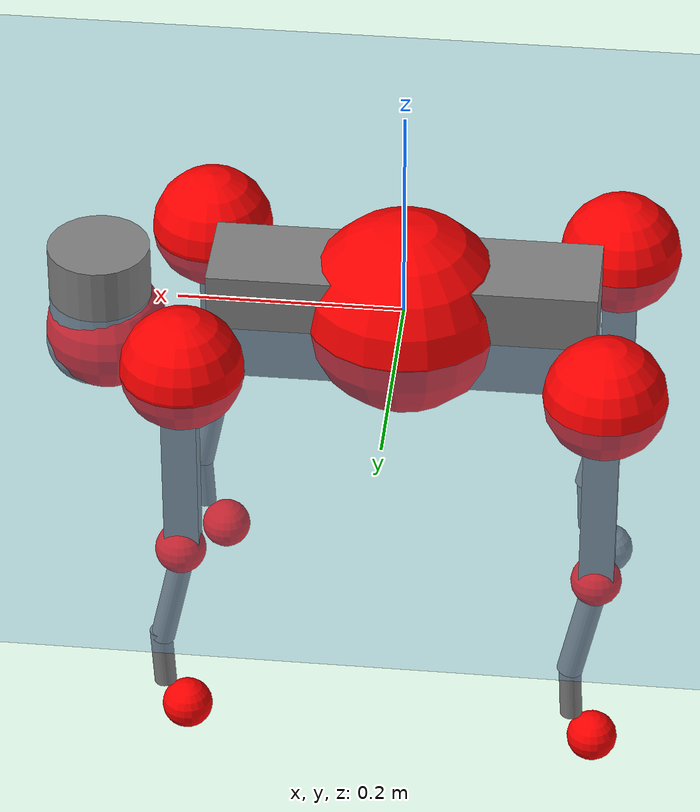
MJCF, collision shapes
<mujoco model="go2">
  <compiler angle="radian" assetdir="assets" balanceinertia="true" inertiafromgeom="false"/>

  <option timestep="0.005" density="1.2" viscosity="2e-05"/>

  <size nkey="1"/>

  <visual>
    <quality shadowsize="8192"/>
    <map shadowclip="0.5"/>
  </visual>

  <default>
    <default class="/">
      <geom contype="0" conaffinity="0" group="1" solref="-1000 -80"/>
      <site size="0.01 0.005 0.005" group="5"/>
      <general forcelimited="true" biastype="affine" gainprm="20" biasprm="0 -20 -0.5"/>
      <default class="go2">
        <joint armature="0.01" damping="0.01" frictionloss="0.2"/>
        <geom condim="1" margin="0.001"/>
        <default class="visual">
          <geom type="mesh" group="2"/>
        </default>
        <default class="collision">
          <geom group="3"/>
          <default class="foot">
            <geom size="0.022 0 0" condim="6" priority="1" friction="0.8 0.02 0.01" solimp="0.015 1 0.022"/>
          </default>
        </default>
        <default class="reward_collision_sphere">
          <geom group="5" rgba="1 0 0 1"/>
        </default>
      </default>
    </default>
  </default>

  <asset>
    <texture type="skybox" colorspace="auto" name="//unnamed_texture_0" builtin="gradient" rgb1="0.95 0.95 0.95" rgb2="0.95 0.95 0.95" width="100" height="600"/>
    <texture type="2d" colorspace="auto" name="texplane" builtin="checker" rgb1="0.345 0.575 0.748" rgb2="0.345 0.575 0.748" markrgb="1 1 1" width="512" height="512"/>
    <material name="MatPlane" class="/" texture="texplane" texuniform="true" texrepeat="2 2" specular="0.9"/>
    <material name="metal" class="/" rgba="0.9 0.95 0.95 1"/>
    <material name="black" class="/" rgba="0 0 0 1"/>
    <material name="white" class="/"/>
    <material name="gray" class="/" rgba="0.671705 0.692426 0.77427 1"/>
    <mesh name="base_0" class="/" file="base_0.obj"/>
    <mesh name="base_1" class="/" file="base_1.obj"/>
    <mesh name="base_2" class="/" file="base_2.obj"/>
    <mesh name="base_3" class="/" file="base_3.obj"/>
    <mesh name="base_4" class="/" file="base_4.obj"/>
    <mesh name="hip_0" class="/" file="hip_0.obj"/>
    <mesh name="hip_1" class="/" file="hip_1.obj"/>
    <mesh name="thigh_0" class="/" file="thigh_0.obj"/>
    <mesh name="thigh_1" class="/" file="thigh_1.obj"/>
    <mesh name="thigh_mirror_0" class="/" file="thigh_mirror_0.obj"/>
    <mesh name="thigh_mirror_1" class="/" file="thigh_mirror_1.obj"/>
    <mesh name="calf_0" class="/" file="calf_0.obj"/>
    <mesh name="calf_1" class="/" file="calf_1.obj"/>
    <mesh name="calf_mirror_0" class="/" file="calf_mirror_0.obj"/>
    <mesh name="calf_mirror_1" class="/" file="calf_mirror_1.obj"/>
    <mesh name="foot" class="/" file="foot.obj"/>
  </asset>

  <worldbody>
    <geom name="floor" class="/" size="100 100 0.125" type="plane" group="0" material="MatPlane"/>
    <light name="toplight_shadow" class="/" pos="0 0 5" dir="0.0990148 0.0990148 -0.990148" type="directional" ambient="0.04 0.04 0.04" diffuse="0.55 0.55 0.55" specular="0.12 0.12 0.12"/>
    <light name="toplight_fill" class="/" pos="0 0 5" dir="0.0990148 0.0990148 -0.990148" type="directional" castshadow="false" ambient="0.04 0.04 0.04" diffuse="0.3 0.3 0.3" specular="0.08 0.08 0.08"/>
    <body name="trunk" childclass="go2" pos="-0.00080985 0.000145348 0.000491434" quat="1 -5.44228e-06 -4.29549e-05 0.000133845">
      <inertial pos="0.0202967 -0.000353903 -0.00410312" quat="-0.00633856 0.71545 0.00162803 0.698633" mass="5.07555" diaginertia="0.0835304 0.0629469 0.0113491"/>
      <joint name="//unnamed_joint_0" type="free" armature="0" damping="0" frictionloss="0"/>
      <geom name="//unnamed_geom_1" class="visual" material="black" mesh="base_0"/>
      <geom name="//unnamed_geom_2" class="visual" material="black" mesh="base_1"/>
      <geom name="//unnamed_geom_3" class="visual" material="black" mesh="base_2"/>
      <geom name="//unnamed_geom_4" class="visual" material="white" mesh="base_3"/>
      <geom name="//unnamed_geom_5" class="visual" material="gray" mesh="base_4"/>
      <geom name="trunk_1" class="collision" size="0.170314 0.0423294 0.0516102" type="box"/>
      <geom name="trunk_2" class="collision" size="0.0452721 0.0407449" pos="0.270054 0 0.00853882" type="cylinder"/>
      <geom name="trunk_3" class="collision" size="0.0425557" pos="0.277634 0 -0.0512329"/>
      <geom name="//unnamed_geom_9" class="reward_collision_sphere" size="0.0905441"/>
      <geom name="//unnamed_geom_10" class="reward_collision_sphere" size="0.0543265" pos="0.265316 0 -0.0384247"/>
      <site name="imu" pos="-0.0252814 -0.0124471 0.0412528" size="0.00905441"/>
      <camera name="track" pos="0 -1.82977 0" quat="0.707107 0.707107 0 0" mode="trackcom"/>
      <camera name="ego_camera" pos="0.295638 0 0.0384247" quat="-0.5 -0.5 0.5 0.5"/>
      <body name="FL_hip" pos="0.182841 0.0428314 0.00190631" quat="0.999999 -0.000757817 -0.000961023 0.000440515">
        <inertial pos="-0.00459094 0.00254111 0.000705916" quat="0.499783 0.500931 0.50389 0.495358" mass="0.517555" diaginertia="0.000693804 0.000392859 0.000222605"/>
        <joint name="FL_hip_joint" pos="0 0 0" axis="0.999975 0.00090734 0.00701352" range="-1.00609 1.0468" armature="0.0095673" damping="0.0043819" frictionloss="0.180694"/>
        <geom name="//unnamed_geom_11" class="visual" material="metal" mesh="hip_0"/>
        <geom name="//unnamed_geom_12" class="visual" material="gray" mesh="hip_1"/>
        <geom name="//unnamed_geom_13" class="collision" size="0.0416503 0.0181088" pos="0 0.0731908 0" quat="0.707107 0.707107 0 0" type="cylinder"/>
        <geom name="//unnamed_geom_14" class="reward_collision_sphere" size="0.0543265" pos="0 0.064042 0"/>
        <body name="FL_thigh" pos="-0.000395891 0.0879494 0.00196862" quat="1 0.000212616 7.64667e-05 -9.0653e-05">
          <inertial pos="-0.00346852 -0.0223854 -0.0303283" quat="0.830908 0.0842246 -0.024125 0.549469" mass="0.861229" diaginertia="0.00455752 0.00377385 0.000399022"/>
          <joint name="FL_thigh_joint" pos="0 0 0" axis="-0.00231603 0.999997 0.000111768" range="-1.5647 3.54014" armature="0.00923022" damping="0" frictionloss="0.181138"/>
          <geom name="//unnamed_geom_15" class="visual" material="metal" mesh="thigh_0"/>
          <geom name="//unnamed_geom_16" class="visual" material="gray" mesh="thigh_1"/>
          <geom name="//unnamed_geom_17" class="collision" size="0.0964295 0.0110917 0.0153925" pos="0 0 -0.0909384" quat="0.707107 0 0.707107 0" type="box"/>
          <body name="FL_calf" pos="0.00200962 0.00211506 -0.181216" quat="1 -9.82181e-05 -8.39713e-07 -8.72022e-05">
            <inertial pos="0.00711419 -1.76398e-05 -0.119663" quat="0.710017 0.00108333 -0.00474882 0.704167" mass="0.183326" diaginertia="0.001144 0.000942927 2.4105e-05"/>
            <joint name="FL_calf_joint" pos="0 0 0" axis="-0.000699025 0.999997 -0.00219251" range="-2.71576 -0.873104" armature="0.00899237" damping="0.0016161" frictionloss="0.178126"/>
            <geom name="//unnamed_geom_18" class="visual" material="gray" mesh="calf_0"/>
            <geom name="//unnamed_geom_19" class="visual" material="black" mesh="calf_1"/>
            <geom name="FL_calf0" class="collision" size="0.0108653 0.0543265" pos="0.00758046 0 -0.0512329" quat="0.994493 0 -0.104807 0" type="cylinder"/>
            <geom name="//unnamed_geom_21" class="collision" size="0.00995985 0.0294268" pos="0.0189511 0 -0.126374" quat="0.999688 0 0.0249974 0" type="cylinder"/>
            <geom name="//unnamed_geom_22" class="visual" pos="0 0 -0.181877" quat="1 0 0 0" material="black" mesh="foot"/>
            <geom name="FL_foot" class="foot" size="0.0168355" pos="-0.00189511 0 -0.181877"/>
            <geom name="//unnamed_geom_24" class="reward_collision_sphere" size="0.022636"/>
            <geom name="//unnamed_geom_25" class="reward_collision_sphere" size="0.022636" pos="-0.00189511 0 -0.181877"/>
            <site name="FL_foot" class="foot" pos="-0.00189511 0 -0.181877" size="0.00905441"/>
          </body>
        </body>
      </body>
      <body name="FR_hip" pos="0.183562 -0.042188 0.00266991" quat="1 2.93719e-05 -0.000127793 -0.000176356">
        <inertial pos="-0.0040681 -0.00222034 2.59651e-05" quat="0.490419 0.503409 0.502993 0.503056" mass="0.516105" diaginertia="0.000697902 0.000388427 0.000223295"/>
        <joint name="FR_hip_joint" pos="0 0 0" axis="0.999999 0.000812843 -0.00149389" stiffness="0.00295192" range="-1.02882 1.05918" armature="0.00911084" damping="0.0111724" frictionloss="0.171799"/>
        <geom name="//unnamed_geom_26" class="visual" pos="0 5.31436e-10 2.27944e-08" quat="4.63268e-05 1 0 0" material="metal" mesh="hip_0"/>
        <geom name="//unnamed_geom_27" class="visual" pos="0 8.61522e-10 -5.63793e-08" quat="4.63268e-05 1 0 0" material="gray" mesh="hip_1"/>
        <geom name="//unnamed_geom_28" class="collision" size="0.0416503 0.0181088" pos="0 -0.0731908 0" quat="0.707107 0.707107 0 0" type="cylinder"/>
        <geom name="//unnamed_geom_29" class="reward_collision_sphere" size="0.0543265" pos="0 -0.064042 0"/>
        <body name="FR_thigh" pos="-2.78454e-05 -0.0873993 -0.000602442" quat="1 -9.68635e-06 -0.000144873 -0.000511622">
          <inertial pos="-0.00343582 0.0205897 -0.0301137" quat="0.561017 -0.020497 0.0787489 0.823795" mass="0.867939" diaginertia="0.00469428 0.0038454 0.000409628"/>
          <joint name="FR_thigh_joint" pos="0 0 0" axis="-0.00259224 -0.999992 -0.00289057" range="-3.53584 1.59614" armature="0.00847787" damping="0.0138798" frictionloss="0.175277"/>
          <geom name="//unnamed_geom_30" class="visual" material="metal" mesh="thigh_mirror_0"/>
          <geom name="//unnamed_geom_31" class="visual" material="gray" mesh="thigh_mirror_1"/>
          <geom name="//unnamed_geom_32" class="collision" size="0.0964295 0.0110917 0.0153925" pos="0 0 -0.0909384" quat="0.707107 0 0.707107 0" type="box"/>
          <body name="FR_calf" pos="-0.000286536 0.000617744 -0.181321" quat="1 -3.90894e-06 5.5066e-06 -4.50887e-05">
            <inertial pos="0.00547225 0.000332738 -0.118435" quat="0.702717 -0.00366969 0.00116461 0.711459" mass="0.170886" diaginertia="0.00108998 0.000936656 2.2766e-05"/>
            <joint name="FR_calf_joint" pos="0 0 0" axis="0.000391445 -0.999972 0.00748316" stiffness="0.000571858" range="0.830589 2.73198" armature="0.00950346" damping="0.011773" frictionloss="0.182006"/>
            <geom name="//unnamed_geom_33" class="visual" material="gray" mesh="calf_mirror_0"/>
            <geom name="//unnamed_geom_34" class="visual" material="black" mesh="calf_mirror_1"/>
            <geom name="FR_calf0" class="collision" size="0.0117707 0.0543265" pos="0.00947557 0 -0.0512329" quat="0.995004 0 -0.0998334 0" type="cylinder"/>
            <geom name="//unnamed_geom_36" class="collision" size="0.00995985 0.0294268" pos="0.0189511 0 -0.126374" quat="0.999688 0 0.0249974 0" type="cylinder"/>
            <geom name="//unnamed_geom_37" class="visual" pos="0 0 -0.181877" quat="1 0 0 0" material="black" mesh="foot"/>
            <geom name="FR_foot" class="foot" size="0.0219237" pos="-0.00189511 0 -0.181877"/>
            <geom name="//unnamed_geom_39" class="reward_collision_sphere" size="0.022636"/>
            <geom name="//unnamed_geom_40" class="reward_collision_sphere" size="0.022636" pos="-0.00189511 0 -0.181877"/>
            <site name="FR_foot" class="foot" pos="-0.00189511 0 -0.181877" size="0.00905441"/>
          </body>
        </body>
      </body>
      <body name="RL_hip" pos="-0.182609 0.0429157 -0.00184617" quat="1 -4.07544e-05 -5.44769e-05 1.07934e-05">
        <inertial pos="0.00484779 0.00181195 -0.00212755" quat="0.505332 0.497312 0.497648 0.499667" mass="0.514048" diaginertia="0.000687367 0.000377819 0.000218395"/>
        <joint name="RL_hip_joint" pos="0 0 0" axis="-0.999816 -0.00505504 0.0184787" range="-0.998879 1.08636" armature="0.00906427" damping="0" frictionloss="0.199415"/>
        <geom name="//unnamed_geom_41" class="visual" pos="-8.16064e-10 0 -1.59967e-07" quat="4.63268e-05 0 1 0" material="metal" mesh="hip_0"/>
        <geom name="//unnamed_geom_42" class="visual" pos="-1.32294e-09 0 -1.41868e-07" quat="4.63268e-05 0 1 0" material="gray" mesh="hip_1"/>
        <geom name="//unnamed_geom_43" class="collision" size="0.0416503 0.0181088" pos="0 0.0731908 0" quat="0.707107 0.707107 0 0" type="cylinder"/>
        <geom name="//unnamed_geom_44" class="reward_collision_sphere" size="0.0543265" pos="0 0.064042 0"/>
        <body name="RL_thigh" pos="0.000543669 0.0878006 -0.001476" quat="1 -4.54566e-06 -2.99965e-05 -3.61195e-05">
          <inertial pos="-0.00537696 -0.0197651 -0.0304777" quat="0.8283 0.0754684 -0.0197998 0.554826" mass="0.848259" diaginertia="0.00436834 0.00370137 0.000384161"/>
          <joint name="RL_thigh_joint" pos="0 0 0" axis="0.0106521 0.999943 -0.00117542" stiffness="0.00376541" range="-0.563448 4.55194" armature="0.00862286" damping="0.00697062" frictionloss="0.18405"/>
          <geom name="//unnamed_geom_45" class="visual" material="metal" mesh="thigh_0"/>
          <geom name="//unnamed_geom_46" class="visual" material="gray" mesh="thigh_1"/>
          <geom name="//unnamed_geom_47" class="collision" size="0.0964295 0.0110917 0.0153925" pos="0 0 -0.0909384" quat="0.707107 0 0.707107 0" type="box"/>
          <body name="RL_calf" pos="9.23833e-05 -0.00209892 -0.183364" quat="1 -3.89889e-07 9.62667e-06 -1.13844e-05">
            <inertial pos="0.00571813 -0.000515183 -0.120249" quat="0.709076 0.00803966 -0.00580581 0.705063" mass="0.176916" diaginertia="0.00113559 0.000927431 2.44444e-05"/>
            <joint name="RL_calf_joint" pos="0 0 0" axis="0.00175397 0.999948 -0.0100874" range="-2.74288 -0.835299" armature="0.0092982" damping="0.000235238" frictionloss="0.180998"/>
            <geom name="//unnamed_geom_48" class="visual" material="gray" mesh="calf_0"/>
            <geom name="//unnamed_geom_49" class="visual" material="black" mesh="calf_1"/>
            <geom name="RL_calf0" class="collision" size="0.0117707 0.0543265" pos="0.00947557 0 -0.0512329" quat="0.995004 0 -0.0998334 0" type="cylinder"/>
            <geom name="//unnamed_geom_51" class="collision" size="0.00995985 0.0294268" pos="0.0189511 0 -0.126374" quat="0.999688 0 0.0249974 0" type="cylinder"/>
            <geom name="//unnamed_geom_52" class="visual" pos="0 0 -0.181877" quat="1 0 0 0" material="black" mesh="foot"/>
            <geom name="RL_foot" class="foot" size="0.0180295" pos="-0.00189511 0 -0.181877"/>
            <geom name="//unnamed_geom_54" class="reward_collision_sphere" size="0.022636"/>
            <geom name="//unnamed_geom_55" class="reward_collision_sphere" size="0.022636" pos="-0.00189511 0 -0.181877"/>
            <site name="RL_foot" class="foot" pos="-0.00189511 0 -0.181877" size="0.00905441"/>
          </body>
        </body>
      </body>
      <body name="RR_hip" pos="-0.183376 -0.0427638 -0.000922374" quat="1 -0.000334164 -0.000116273 -0.000100753">
        <inertial pos="0.00495963 0.000171126 -0.000945692" quat="0.498948 0.497259 0.498427 0.505327" mass="0.483135" diaginertia="0.000655993 0.00037217 0.000210934"/>
        <joint name="RR_hip_joint" pos="0 0 0" axis="-0.999998 0.000142167 -0.00174346" range="-1.06538 1.0192" armature="0.00918226" damping="0" frictionloss="0.171772"/>
        <geom name="//unnamed_geom_56" class="visual" pos="8.14932e-10 5.31436e-10 -1.82762e-07" quat="2.14617e-09 4.63268e-05 4.63268e-05 -1" material="metal" mesh="hip_0"/>
        <geom name="//unnamed_geom_57" class="visual" pos="1.32573e-09 8.61522e-10 -8.54889e-08" quat="2.14617e-09 4.63268e-05 4.63268e-05 -1" material="gray" mesh="hip_1"/>
        <geom name="//unnamed_geom_58" class="collision" size="0.0416503 0.0181088" pos="0 -0.0731908 0" quat="0.707107 0.707107 0 0" type="cylinder"/>
        <geom name="//unnamed_geom_59" class="reward_collision_sphere" size="0.0543265" pos="0 -0.064042 0"/>
        <body name="RR_thigh" pos="-0.000334003 -0.0886194 0.00120959" quat="1 -0.000107638 0.000330383 0.000180444">
          <inertial pos="-0.00359846 0.0214303 -0.0279968" quat="0.551624 -0.0200471 0.0847477 0.829534" mass="0.823058" diaginertia="0.00441674 0.00364882 0.000398371"/>
          <joint name="RR_thigh_joint" pos="0 0 0" axis="0.00130434 -0.999953 0.00963441" stiffness="0.00171189" range="-4.58227 0.56409" armature="0.00909035" damping="0.0106279" frictionloss="0.1668"/>
          <geom name="//unnamed_geom_60" class="visual" material="metal" mesh="thigh_mirror_0"/>
          <geom name="//unnamed_geom_61" class="visual" material="gray" mesh="thigh_mirror_1"/>
          <geom name="//unnamed_geom_62" class="collision" size="0.0964295 0.0110917 0.0153925" pos="0 0 -0.0909384" quat="0.707107 0 0.707107 0" type="box"/>
          <body name="RR_calf" pos="0.00300765 -0.00122056 -0.182635" quat="1 -9.70487e-05 -9.77743e-05 6.35584e-05">
            <inertial pos="0.00471994 0.000557541 -0.121121" quat="0.703623 -0.00434358 0.00159172 0.710559" mass="0.175619" diaginertia="0.00113858 0.00092572 2.4116e-05"/>
            <joint name="RR_calf_joint" pos="0 0 0" axis="0.00270443 -0.999989 0.00386734" range="0.838153 2.72424" armature="0.00934829" damping="0.00293159" frictionloss="0.183294"/>
            <geom name="//unnamed_geom_63" class="visual" material="gray" mesh="calf_mirror_0"/>
            <geom name="//unnamed_geom_64" class="visual" material="black" mesh="calf_mirror_1"/>
            <geom name="RR_calf0" class="collision" size="0.0117707 0.0543265" pos="0.00947557 0 -0.0512329" quat="0.995004 0 -0.0998334 0" type="cylinder"/>
            <geom name="//unnamed_geom_66" class="collision" size="0.00995985 0.0294268" pos="0.0189511 0 -0.126374" quat="0.999688 0 0.0249974 0" type="cylinder"/>
            <geom name="//unnamed_geom_67" class="visual" pos="0 0 -0.181877" quat="1 0 0 0" material="black" mesh="foot"/>
            <geom name="RR_foot" class="foot" size="0.023196" pos="-0.00189511 0 -0.181877"/>
            <geom name="//unnamed_geom_69" class="reward_collision_sphere" size="0.022636"/>
            <geom name="//unnamed_geom_70" class="reward_collision_sphere" size="0.022636" pos="-0.00189511 0 -0.181877"/>
            <site name="RR_foot" class="foot" pos="-0.00189511 0 -0.181877" size="0.00905441"/>
          </body>
        </body>
      </body>
    </body>
  </worldbody>

  <contact>
    <pair class="/" geom1="floor" geom2="FL_foot" name="//unnamed_contact_0"/>
    <pair class="/" geom1="floor" geom2="FR_foot" name="//unnamed_contact_1"/>
    <pair class="/" geom1="floor" geom2="RL_foot" name="//unnamed_contact_2"/>
    <pair class="/" geom1="floor" geom2="RR_foot" name="//unnamed_contact_3"/>
  </contact>

  <actuator>
    <general name="FL_hip" class="/" joint="FL_hip_joint" forcerange="-21.466 21.466" gainprm="18.6284" biasprm="0 -18.6284 -0.473029"/>
    <general name="FL_thigh" class="/" joint="FL_thigh_joint" forcerange="-22.9089 22.9089" gainprm="18.6284" biasprm="0 -18.6284 -0.473029"/>
    <general name="FL_calf" class="/" joint="FL_calf_joint" forcerange="-37.8472 37.8472" gainprm="18.6284" biasprm="0 -18.6284 -0.473029"/>
    <general name="FR_hip" class="/" joint="FR_hip_joint" forcerange="-21.8241 21.8241" gainprm="18.6284" biasprm="0 -18.6284 -0.473029"/>
    <general name="FR_thigh" class="/" joint="FR_thigh_joint" forcerange="-21.4104 21.4104" gainprm="18.6284" biasprm="0 -18.6284 -0.473029"/>
    <general name="FR_calf" class="/" joint="FR_calf_joint" forcerange="-44.57 44.57" gainprm="18.6284" biasprm="0 -18.6284 -0.473029"/>
    <general name="RL_hip" class="/" joint="RL_hip_joint" forcerange="-23.1696 23.1696" gainprm="18.6284" biasprm="0 -18.6284 -0.473029"/>
    <general name="RL_thigh" class="/" joint="RL_thigh_joint" forcerange="-21.0728 21.0728" gainprm="18.6284" biasprm="0 -18.6284 -0.473029"/>
    <general name="RL_calf" class="/" joint="RL_calf_joint" forcerange="-41.7252 41.7252" gainprm="18.6284" biasprm="0 -18.6284 -0.473029"/>
    <general name="RR_hip" class="/" joint="RR_hip_joint" forcerange="-21.2493 21.2493" gainprm="18.6284" biasprm="0 -18.6284 -0.473029"/>
    <general name="RR_thigh" class="/" joint="RR_thigh_joint" forcerange="-19.492 19.492" gainprm="18.6284" biasprm="0 -18.6284 -0.473029"/>
    <general name="RR_calf" class="/" joint="RR_calf_joint" forcerange="-39.0388 39.0388" gainprm="18.6284" biasprm="0 -18.6284 -0.473029"/>
  </actuator>

  <sensor>
    <gyro site="imu" name="imu_angular_velocity"/>
    <velocimeter site="imu" name="imu_linear_velocity"/>
    <framelinvel objtype="site" objname="FL_foot" name="FL_foot_global_linear_velocity"/>
    <framelinvel objtype="site" objname="FR_foot" name="FR_foot_global_linear_velocity"/>
    <framelinvel objtype="site" objname="RL_foot" name="RL_foot_global_linear_velocity"/>
    <framelinvel objtype="site" objname="RR_foot" name="RR_foot_global_linear_velocity"/>
  </sensor>

  <keyframe>
    <key name="home" qpos="0 0 0.325 1 0 0 0 0.1 0.8 -1.5 -0.1 -0.8 1.5 -0.1 0.8 -1.5 0.1 -0.8 1.5"/>
  </keyframe>
</mujoco>
